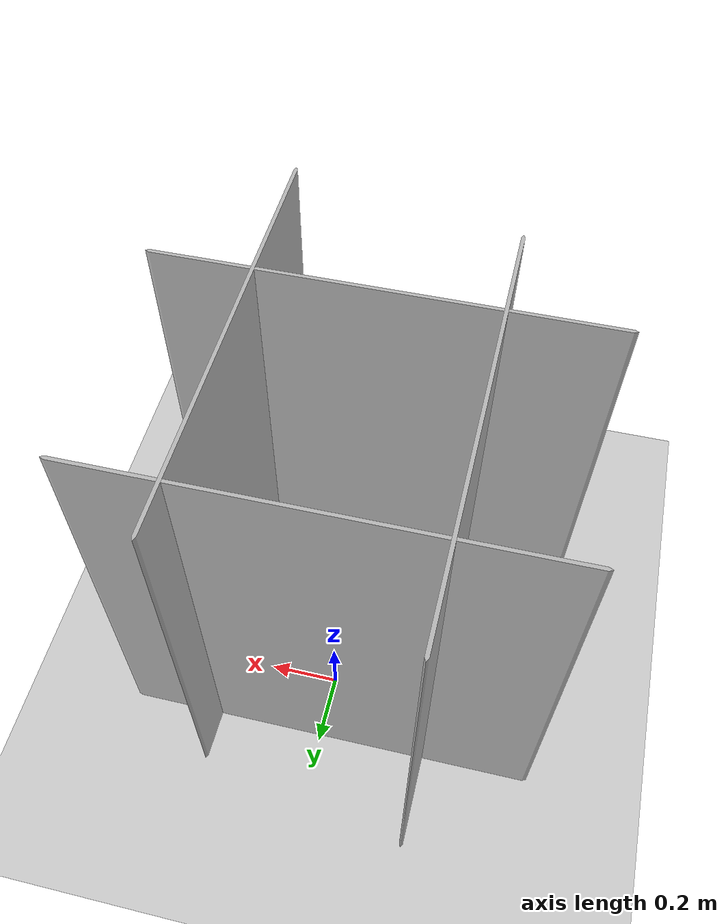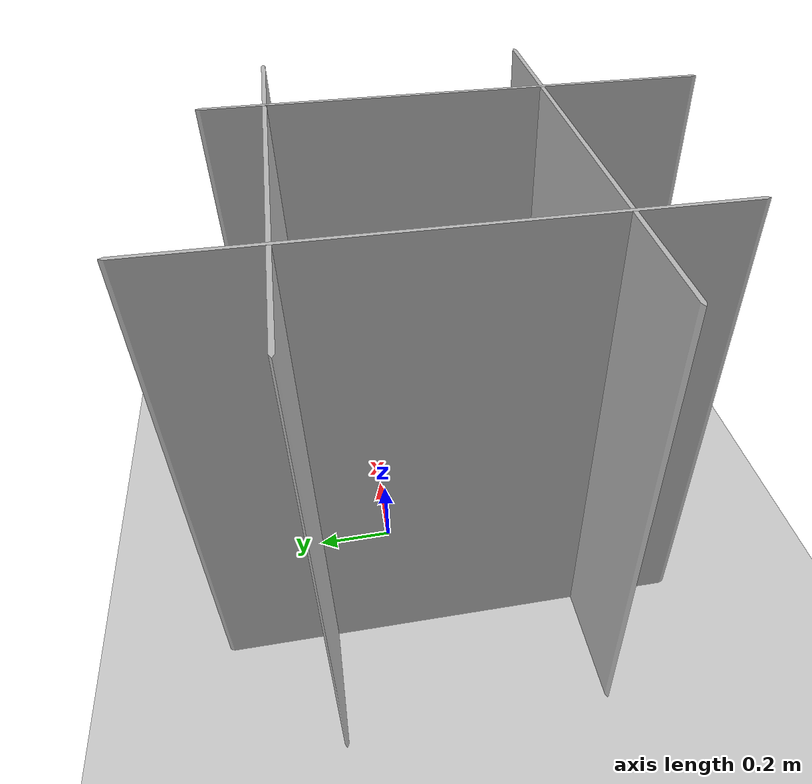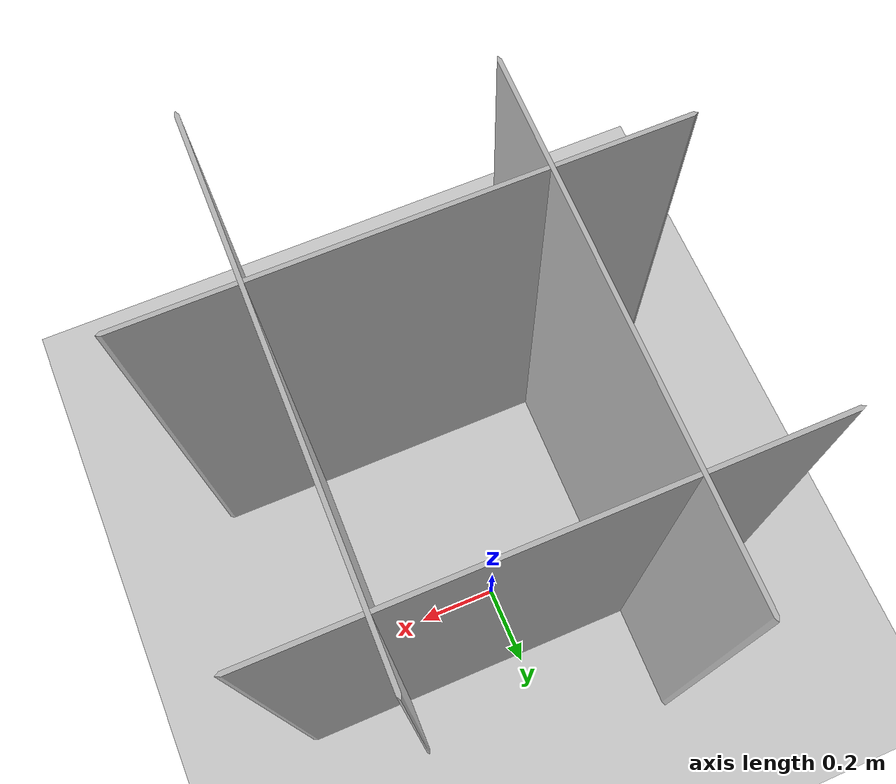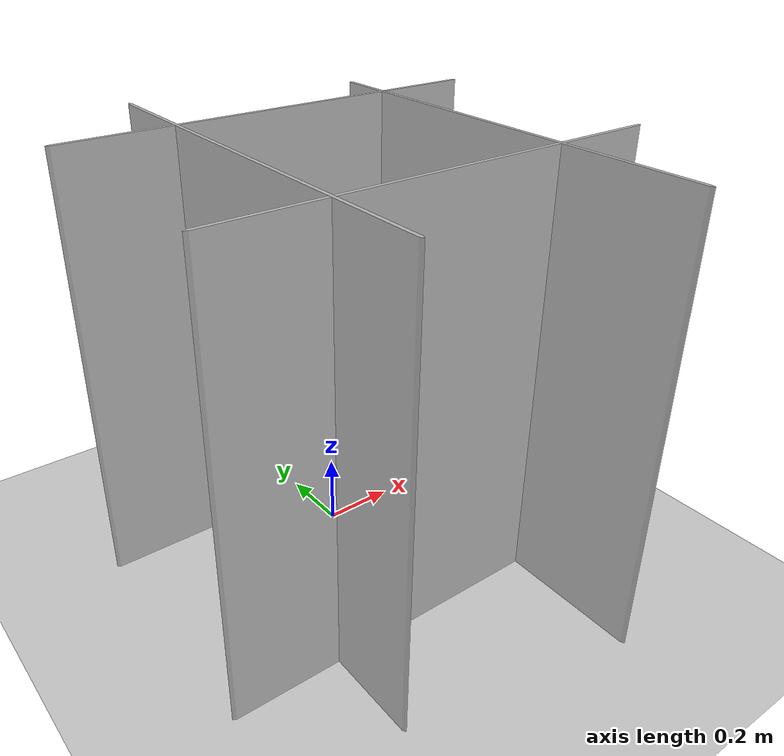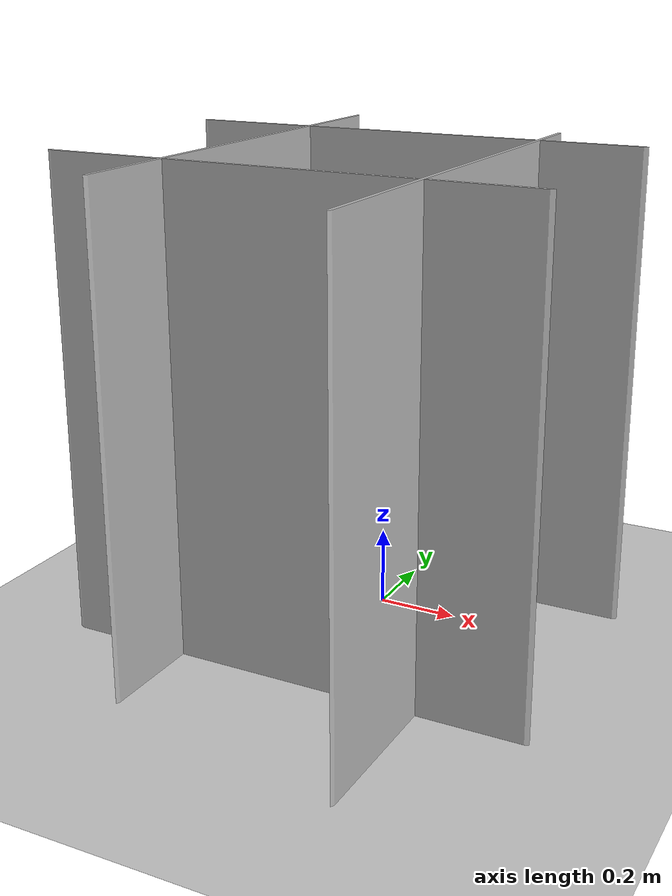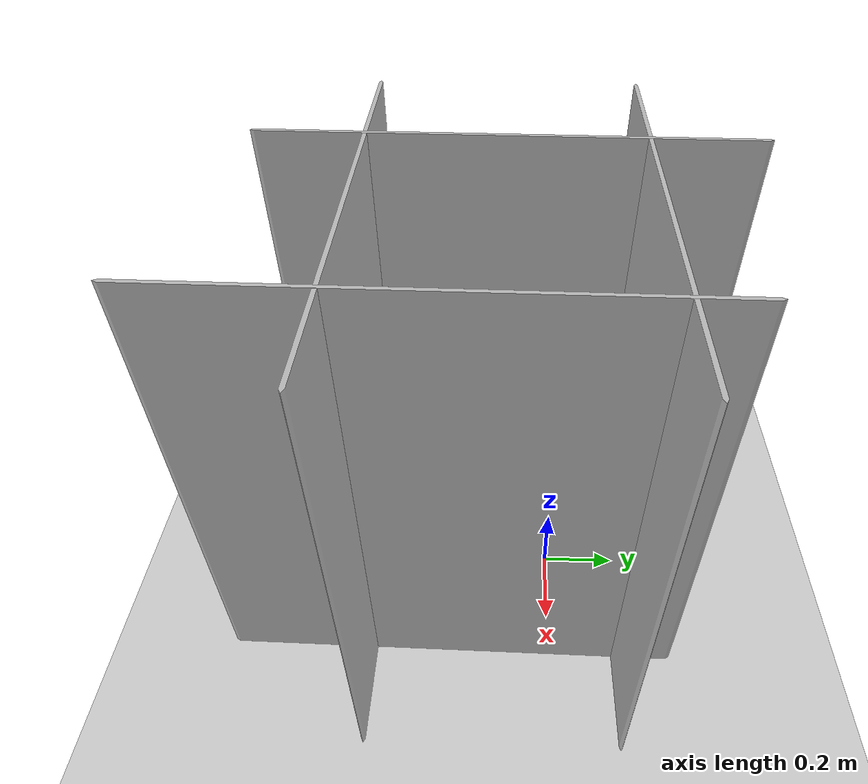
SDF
<sdf version="1.6">
 <world name="default">
  <light name="sun" type="directional">
   <pose>0 0 10 0 -0 0</pose>
   <diffuse>0.8 0.8 0.8 1</diffuse>
   <specular>0.2 0.2 0.2 1</specular>
   <attenuation>
    <range>1000</range>
    <constant>0.9</constant>
    <linear>0.01</linear>
    <quadratic>0.001</quadratic>
   </attenuation>
   <direction>-0.5 0.1 -0.9</direction>
  </light>
  <model name="ground_plane">
   <static>1</static>
   <link name="link">
    <collision name="collision">
     <geometry><plane><normal>0 0 1</normal><size>100 100</size></plane></geometry>
     <surface><friction><ode><mu>100</mu><mu2>50</mu2></ode></friction></surface>
    </collision>
    <visual name="visual">
     <cast_shadows>0</cast_shadows>
     <geometry><plane><normal>0 0 1</normal><size>100 100</size></plane></geometry>
     <material>
      <script><uri>file://media/materials/scripts/gazebo.material</uri><name>Gazebo/Grey</name></script>
     </material>
    </visual>
   </link>
  </model>
  <gravity>0 0 -9.8</gravity>
  <magnetic_field>6e-06 2.3e-05 -4.2e-05</magnetic_field>
  <atmosphere type="adiabatic"/>
  <physics name="default_physics" default="0" type="ode">
   <max_step_size>0.001</max_step_size>
   <real_time_factor>1</real_time_factor>
   <real_time_update_rate>1000</real_time_update_rate>
  </physics>
  <scene><ambient>0.4 0.4 0.4 1</ambient><background>0.7 0.7 0.7 1</background><shadows>1</shadows></scene>
  <spherical_coordinates>
   <surface_model>EARTH_WGS84</surface_model>
   <latitude_deg>0</latitude_deg>
   <longitude_deg>0</longitude_deg>
   <elevation>0</elevation>
   <heading_deg>0</heading_deg>
  </spherical_coordinates>
  <model name="nist_maze_wall_120">
   <static>1</static>
   <link name="nist_maze_wall_120_link">
    <collision name="collision">
     <geometry>
      <mesh><uri>model://nist_maze_wall_120/meshes/nist_maze_wall_120.dae</uri><scale>1 1 1</scale></mesh>
     </geometry>
    </collision>
    <visual name="visual">
     <geometry>
      <mesh><uri>model://nist_maze_wall_120/meshes/nist_maze_wall_120.dae</uri><scale>1 1 1</scale></mesh>
     </geometry>
    </visual>
   </link>
   <pose>-0.02076 -0.421595 0 0 -0 0</pose>
  </model>
  <model name="nist_maze_wall_120_0">
   <static>1</static>
   <link name="nist_maze_wall_120_link">
    <collision name="collision">
     <geometry>
      <mesh><uri>model://nist_maze_wall_120/meshes/nist_maze_wall_120.dae</uri><scale>1 1 1</scale></mesh>
     </geometry>
    </collision>
    <visual name="visual">
     <geometry>
      <mesh><uri>model://nist_maze_wall_120/meshes/nist_maze_wall_120.dae</uri><scale>1 1 1</scale></mesh>
     </geometry>
    </visual>
   </link>
   <pose>-0.019565 -1.07513 0 0 -0 0</pose>
  </model>
  <model name="nist_maze_wall_120_1">
   <static>1</static>
   <link name="nist_maze_wall_120_link">
    <collision name="collision">
     <geometry>
      <mesh><uri>model://nist_maze_wall_120/meshes/nist_maze_wall_120.dae</uri><scale>1 1 1</scale></mesh>
     </geometry>
    </collision>
    <visual name="visual">
     <geometry>
      <mesh><uri>model://nist_maze_wall_120/meshes/nist_maze_wall_120.dae</uri><scale>1 1 1</scale></mesh>
     </geometry>
    </visual>
   </link>
   <pose>-0.291177 -0.260956 0.000244 0 0 -1.58225</pose>
  </model>
  <model name="nist_maze_wall_120_1_clone">
   <static>1</static>
   <link name="nist_maze_wall_120_link">
    <collision name="collision">
     <geometry>
      <mesh><uri>model://nist_maze_wall_120/meshes/nist_maze_wall_120.dae</uri><scale>1 1 1</scale></mesh>
     </geometry>
    </collision>
    <visual name="visual">
     <geometry>
      <mesh><uri>model://nist_maze_wall_120/meshes/nist_maze_wall_120.dae</uri><scale>1 1 1</scale></mesh>
     </geometry>
    </visual>
   </link>
   <pose>-0.90892 -0.1361 0.000244 0 0 -1.58225</pose>
  </model>
 </world>
</sdf>
